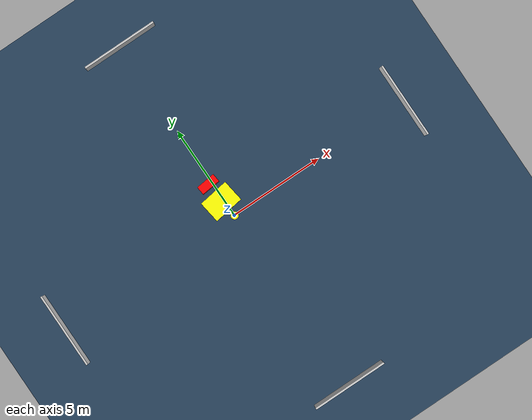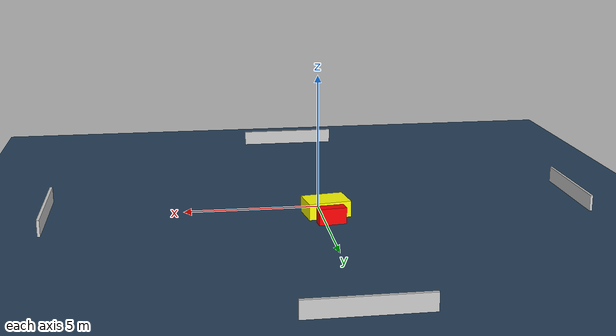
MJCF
<?xml version="1.0" ?>
<mujoco model="generated_environment">
  <option timestep="0.01" integrator="RK4" cone="elliptic"/>
  <default>
    <geom density="1"/>
  </default>
  <asset>
    <texture builtin="gradient" height="3072" name="skybox" rgb1="0.3 0.5 0.7" rgb2="0 0 0" type="skybox" width="512"/>
    <texture builtin="checker" height="300" name="groundplane" rgb1="0.2 0.3 0.4" rgb2="0.1 0.2 0.3" type="2d" width="300"/>
    <material name="groundplane" reflectance="0.2" texrepeat="5 5" texture="groundplane"/>
  </asset>
  <worldbody>
    <light dir="0 0 -1" directional="true" pos="0 0 1.5"/>
    <geom condim="3" friction="0.5 0.005 0.001" material="groundplane" name="floor" pos="0 0 0" size="0 0 0.05" type="plane"/>
    <body name="walls">
      <geom name="wall_1" condim="4" pos="-10.0 0.0 0.3" rgba="0.800000011920929 0.800000011920929 0.800000011920929 1.0" size="0.05 2.0 0.3" type="box"/>
      <geom name="wall_2" condim="4" pos="10.0 0.0 0.3" rgba="0.800000011920929 0.800000011920929 0.800000011920929 1.0" size="0.05 2.0 0.3" type="box"/>
      <geom name="wall_3" condim="4" pos="0.0 -10.0 0.3" rgba="0.800000011920929 0.800000011920929 0.800000011920929 1.0" size="2.0 0.05 0.3" type="box"/>
      <geom name="wall_4" condim="4" pos="0.0 10.0 0.3" rgba="0.800000011920929 0.800000011920929 0.800000011920929 1.0" size="2.0 0.05 0.3" type="box"/>
    </body>
    <body name="robot">
      <joint name="joint_x" type="slide" pos="0 0 0" axis="1 0 0"/>
      <joint name="joint_y" type="slide" pos="0 0 0" axis="0 1 0"/>
      <geom name="robot" type="cylinder" pos="0.0 0.0 0.2" size="0.2 0.2 0.0" mass="5.0" friction="1.0 0.005 0.0001" condim="4" rgba="1.0 1.0 0.0 1.0"/>
    </body>
    <body name="obstacle_1_movable">
      <geom name="obstacle_1_movable" condim="4" pos="-0.16564477501501754 0.9252834030665581 0.3" euler="0 0 98.29351134984245" friction="0.0 0.005 0.001" rgba="1.0 1.0 0.0 1.0" size="0.5737745695176012 0.7934680822604008 0.3" type="box" mass="0.1"/>
      <joint type="free"/>
    </body>
    <body name="obstacle_2_static">
      <geom name="obstacle_2_static" condim="4" pos="-0.2152350023827459 1.9731350744180098 0.3" euler="0 0 95.98612360275895" friction="0.0 0.005 0.001" rgba="1.0 0.0 0.0 1.0" size="0.21940445786958135 0.5044258022476154 0.3" type="box"/>
    </body>
  </worldbody>
  <actuator>
    <motor name="actuator_x" joint="joint_x" gear="1" ctrlrange="-1 1"/>
    <motor name="actuator_y" joint="joint_y" gear="1" ctrlrange="-1 1"/>
  </actuator>
</mujoco>
